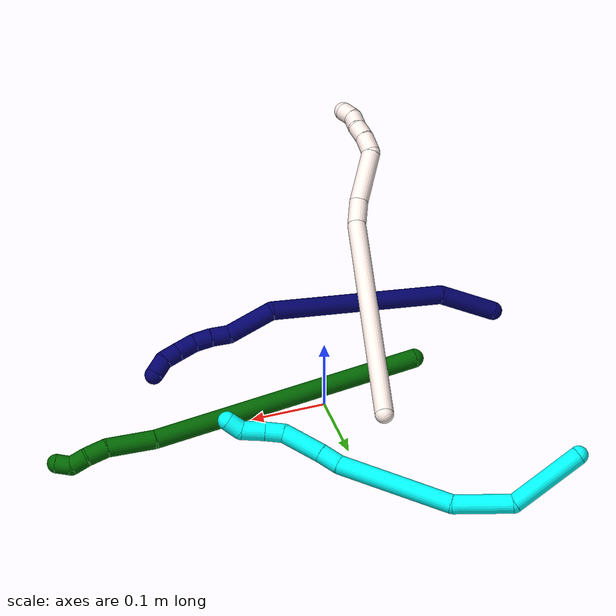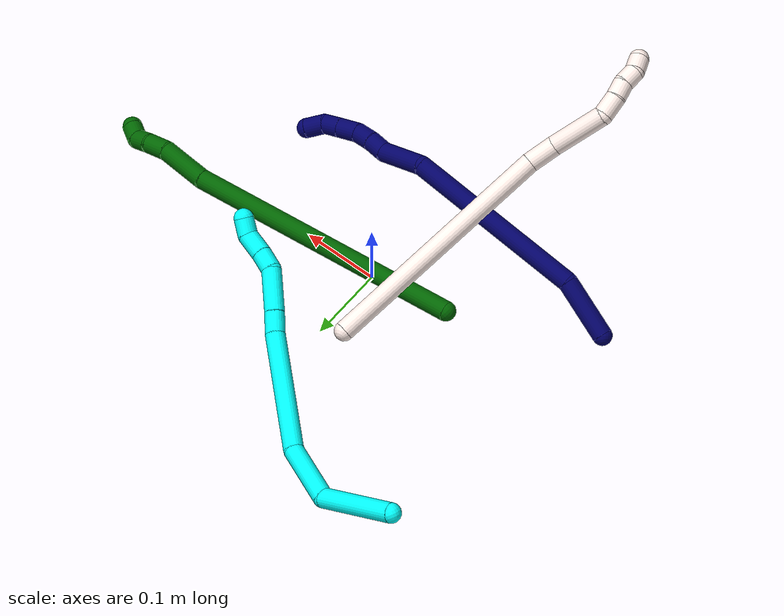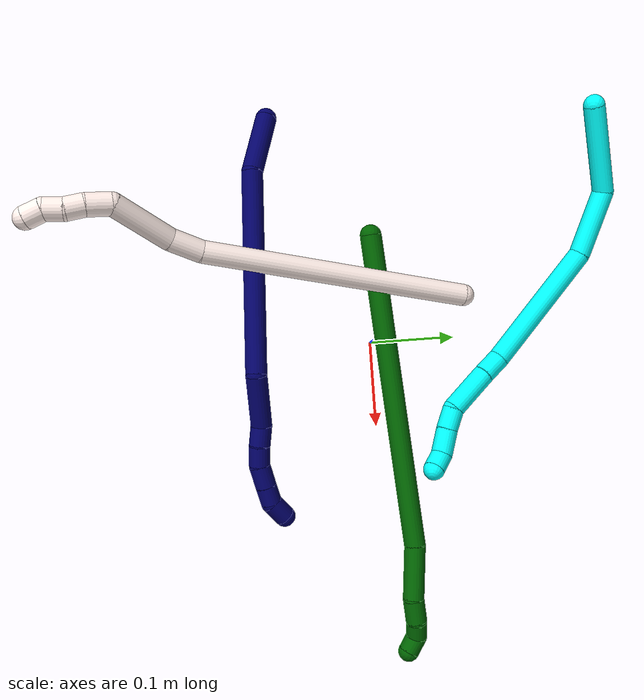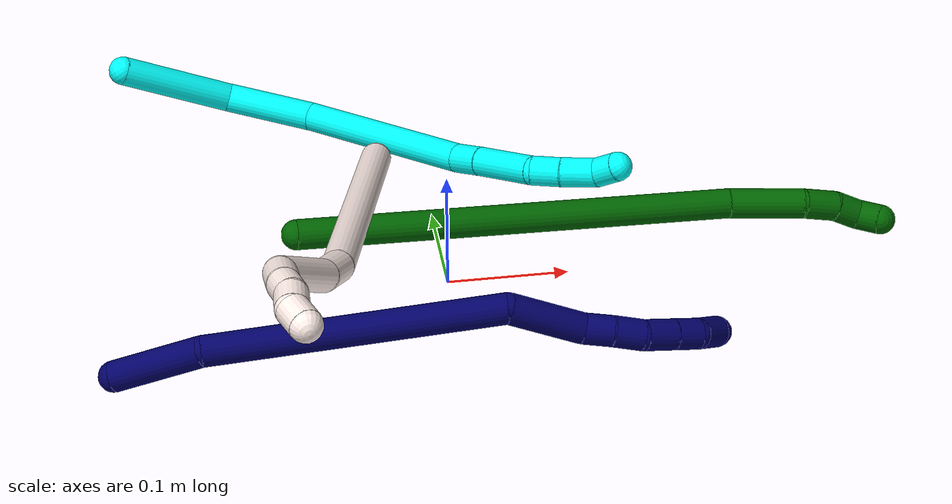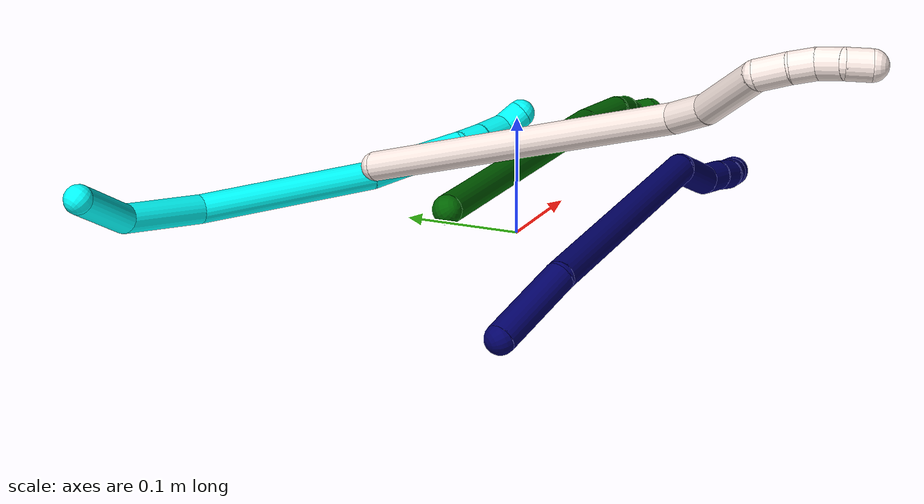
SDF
<sdf version="1.7">
 <world name="default">
  <model name="3">
   <static>0</static>
   <link name="3">
    <collision name="collision-cylinder-e_1_1_4">
     <pose>-0.001968 -0.047898 -0.018093 1.93197 -0.038408 -0.055558</pose>
     <geometry><cylinder><radius>0.0125</radius><length>0.102478</length></cylinder></geometry>
     <surface>
      <friction><ode><mu>1.16</mu><mu2>1.16</mu2><slip1>0</slip1><slip2>0</slip2></ode></friction>
      <contact><ode><kp>1e+06</kp><kd>1</kd><max_vel>0</max_vel><min_depth>0.001</min_depth></ode></contact>
     </surface>
    </collision>
    <visual name="visual-cylinder-e_1_1_4">
     <pose>-0.001968 -0.047898 -0.018093 1.93197 -0.038408 -0.055558</pose>
     <geometry><cylinder><radius>0.0125</radius><length>0.102478</length></cylinder></geometry>
     <material><ambient>0.003922 1 0.996078 1</ambient></material>
    </visual>
    <collision name="collision-cylinder-e_2_4_5">
     <pose>0.00968 -0.119018 -0.064852 2.46072 0.353561 0.934202</pose>
     <geometry><cylinder><radius>0.0125</radius><length>0.078647</length></cylinder></geometry>
     <surface>
      <friction><ode><mu>1.16</mu><mu2>1.16</mu2><slip1>0</slip1><slip2>0</slip2></ode></friction>
      <contact><ode><kp>1e+06</kp><kd>1</kd><max_vel>0</max_vel><min_depth>0.001</min_depth></ode></contact>
     </surface>
    </collision>
    <visual name="visual-cylinder-e_2_4_5">
     <pose>0.00968 -0.119018 -0.064852 2.46072 0.353561 0.934202</pose>
     <geometry><cylinder><radius>0.0125</radius><length>0.078647</length></cylinder></geometry>
     <material><ambient>0.003922 1 0.996078 1</ambient></material>
    </visual>
    <collision name="collision-cylinder-e_3_5_6">
     <pose>0.066566 -0.165205 -0.155568 2.78713 0.579172 2.05911</pose>
     <geometry><cylinder><radius>0.0125</radius><length>0.158114</length></cylinder></geometry>
     <surface>
      <friction><ode><mu>1.16</mu><mu2>1.16</mu2><slip1>0</slip1><slip2>0</slip2></ode></friction>
      <contact><ode><kp>1e+06</kp><kd>1</kd><max_vel>0</max_vel><min_depth>0.001</min_depth></ode></contact>
     </surface>
    </collision>
    <visual name="visual-cylinder-e_3_5_6">
     <pose>0.066566 -0.165205 -0.155568 2.78713 0.579172 2.05911</pose>
     <geometry><cylinder><radius>0.0125</radius><length>0.158114</length></cylinder></geometry>
     <material><ambient>0.003922 1 0.996078 1</ambient></material>
    </visual>
    <collision name="collision-cylinder-e_4_6_7">
     <pose>0.117251 -0.189164 -0.22936 3.05711 0.56163 2.85061</pose>
     <geometry><cylinder><radius>0.0125</radius><length>0.027843</length></cylinder></geometry>
     <surface>
      <friction><ode><mu>1.16</mu><mu2>1.16</mu2><slip1>0</slip1><slip2>0</slip2></ode></friction>
      <contact><ode><kp>1e+06</kp><kd>1</kd><max_vel>0</max_vel><min_depth>0.001</min_depth></ode></contact>
     </surface>
    </collision>
    <visual name="visual-cylinder-e_4_6_7">
     <pose>0.117251 -0.189164 -0.22936 3.05711 0.56163 2.85061</pose>
     <geometry><cylinder><radius>0.0125</radius><length>0.027843</length></cylinder></geometry>
     <material><ambient>0.003922 1 0.996078 1</ambient></material>
    </visual>
    <collision name="collision-cylinder-e_5_7_8">
     <pose>0.139539 -0.193934 -0.264356 2.98063 0.563126 2.59773</pose>
     <geometry><cylinder><radius>0.0125</radius><length>0.055725</length></cylinder></geometry>
     <surface>
      <friction><ode><mu>1.16</mu><mu2>1.16</mu2><slip1>0</slip1><slip2>0</slip2></ode></friction>
      <contact><ode><kp>1e+06</kp><kd>1</kd><max_vel>0</max_vel><min_depth>0.001</min_depth></ode></contact>
     </surface>
    </collision>
    <visual name="visual-cylinder-e_5_7_8">
     <pose>0.139539 -0.193934 -0.264356 2.98063 0.563126 2.59773</pose>
     <geometry><cylinder><radius>0.0125</radius><length>0.055725</length></cylinder></geometry>
     <material><ambient>0.003922 1 0.996078 1</ambient></material>
    </visual>
    <collision name="collision-cylinder-e_6_8_9">
     <pose>0.157606 -0.203747 -0.298143 2.62103 0.257269 0.904261</pose>
     <geometry><cylinder><radius>0.0125</radius><length>0.025105</length></cylinder></geometry>
     <surface>
      <friction><ode><mu>1.16</mu><mu2>1.16</mu2><slip1>0</slip1><slip2>0</slip2></ode></friction>
      <contact><ode><kp>1e+06</kp><kd>1</kd><max_vel>0</max_vel><min_depth>0.001</min_depth></ode></contact>
     </surface>
    </collision>
    <visual name="visual-cylinder-e_6_8_9">
     <pose>0.157606 -0.203747 -0.298143 2.62103 0.257269 0.904261</pose>
     <geometry><cylinder><radius>0.0125</radius><length>0.025105</length></cylinder></geometry>
     <material><ambient>0.003922 1 0.996078 1</ambient></material>
    </visual>
    <collision name="collision-cylinder-e_7_9_10">
     <pose>0.163422 -0.217726 -0.321437 2.585 0.172689 0.588343</pose>
     <geometry><cylinder><radius>0.0125</radius><length>0.030516</length></cylinder></geometry>
     <surface>
      <friction><ode><mu>1.16</mu><mu2>1.16</mu2><slip1>0</slip1><slip2>0</slip2></ode></friction>
      <contact><ode><kp>1e+06</kp><kd>1</kd><max_vel>0</max_vel><min_depth>0.001</min_depth></ode></contact>
     </surface>
    </collision>
    <visual name="visual-cylinder-e_7_9_10">
     <pose>0.163422 -0.217726 -0.321437 2.585 0.172689 0.588343</pose>
     <geometry><cylinder><radius>0.0125</radius><length>0.030516</length></cylinder></geometry>
     <material><ambient>0.003922 1 0.996078 1</ambient></material>
    </visual>
    <collision name="collision-cylinder-e_8_10_2">
     <pose>0.168485 -0.225599 -0.344705 -3.1352 0.228326 -3.08587</pose>
     <geometry><cylinder><radius>0.0125</radius><length>0.021572</length></cylinder></geometry>
     <surface>
      <friction><ode><mu>1.16</mu><mu2>1.16</mu2><slip1>0</slip1><slip2>0</slip2></ode></friction>
      <contact><ode><kp>1e+06</kp><kd>1</kd><max_vel>0</max_vel><min_depth>0.001</min_depth></ode></contact>
     </surface>
    </collision>
    <visual name="visual-cylinder-e_8_10_2">
     <pose>0.168485 -0.225599 -0.344705 -3.1352 0.228326 -3.08587</pose>
     <geometry><cylinder><radius>0.0125</radius><length>0.021572</length></cylinder></geometry>
     <material><ambient>0.003922 1 0.996078 1</ambient></material>
    </visual>
    <collision name="collision-sphere-2">
     <pose>0.170926 -0.225532 -0.355211 0 -0 0</pose>
     <geometry><sphere><radius>0.0125</radius></sphere></geometry>
     <surface>
      <friction><ode><mu>1.16</mu><mu2>1.16</mu2><slip1>0</slip1><slip2>0</slip2></ode></friction>
      <contact><ode><kp>1e+06</kp><kd>1</kd><max_vel>0</max_vel><min_depth>0.001</min_depth></ode></contact>
     </surface>
    </collision>
    <visual name="visual-sphere-2">
     <pose>0.170926 -0.225532 -0.355211 0 -0 0</pose>
     <geometry><sphere><radius>0.0125</radius></sphere></geometry>
     <material><ambient>0.003922 1 0.996078 1</ambient></material>
    </visual>
    <collision name="collision-sphere-10">
     <pose>0.166044 -0.225666 -0.334199 0 -0 0</pose>
     <geometry><sphere><radius>0.0125</radius></sphere></geometry>
     <surface>
      <friction><ode><mu>1.16</mu><mu2>1.16</mu2><slip1>0</slip1><slip2>0</slip2></ode></friction>
      <contact><ode><kp>1e+06</kp><kd>1</kd><max_vel>0</max_vel><min_depth>0.001</min_depth></ode></contact>
     </surface>
    </collision>
    <visual name="visual-sphere-10">
     <pose>0.166044 -0.225666 -0.334199 0 -0 0</pose>
     <geometry><sphere><radius>0.0125</radius></sphere></geometry>
     <material><ambient>0.003922 1 0.996078 1</ambient></material>
    </visual>
    <collision name="collision-sphere-9">
     <pose>0.1608 -0.209785 -0.308675 0 -0 0</pose>
     <geometry><sphere><radius>0.0125</radius></sphere></geometry>
     <surface>
      <friction><ode><mu>1.16</mu><mu2>1.16</mu2><slip1>0</slip1><slip2>0</slip2></ode></friction>
      <contact><ode><kp>1e+06</kp><kd>1</kd><max_vel>0</max_vel><min_depth>0.001</min_depth></ode></contact>
     </surface>
    </collision>
    <visual name="visual-sphere-9">
     <pose>0.1608 -0.209785 -0.308675 0 -0 0</pose>
     <geometry><sphere><radius>0.0125</radius></sphere></geometry>
     <material><ambient>0.003922 1 0.996078 1</ambient></material>
    </visual>
    <collision name="collision-sphere-4">
     <pose>-0.003935 -0.095796 -0.036186 0 -0 0</pose>
     <geometry><sphere><radius>0.0125</radius></sphere></geometry>
     <surface>
      <friction><ode><mu>1.16</mu><mu2>1.16</mu2><slip1>0</slip1><slip2>0</slip2></ode></friction>
      <contact><ode><kp>1e+06</kp><kd>1</kd><max_vel>0</max_vel><min_depth>0.001</min_depth></ode></contact>
     </surface>
    </collision>
    <visual name="visual-sphere-4">
     <pose>-0.003935 -0.095796 -0.036186 0 -0 0</pose>
     <geometry><sphere><radius>0.0125</radius></sphere></geometry>
     <material><ambient>0.003922 1 0.996078 1</ambient></material>
    </visual>
    <collision name="collision-sphere-1">
     <geometry><sphere><radius>0.0125</radius></sphere></geometry>
     <surface>
      <friction><ode><mu>1.16</mu><mu2>1.16</mu2><slip1>0</slip1><slip2>0</slip2></ode></friction>
      <contact><ode><kp>1e+06</kp><kd>1</kd><max_vel>0</max_vel><min_depth>0.001</min_depth></ode></contact>
     </surface>
    </collision>
    <visual name="visual-sphere-1">
     <geometry><sphere><radius>0.0125</radius></sphere></geometry>
     <material><ambient>0.003922 1 0.996078 1</ambient></material>
    </visual>
    <collision name="collision-sphere-8">
     <pose>0.154413 -0.19771 -0.287612 0 -0 0</pose>
     <geometry><sphere><radius>0.0125</radius></sphere></geometry>
     <surface>
      <friction><ode><mu>1.16</mu><mu2>1.16</mu2><slip1>0</slip1><slip2>0</slip2></ode></friction>
      <contact><ode><kp>1e+06</kp><kd>1</kd><max_vel>0</max_vel><min_depth>0.001</min_depth></ode></contact>
     </surface>
    </collision>
    <visual name="visual-sphere-8">
     <pose>0.154413 -0.19771 -0.287612 0 -0 0</pose>
     <geometry><sphere><radius>0.0125</radius></sphere></geometry>
     <material><ambient>0.003922 1 0.996078 1</ambient></material>
    </visual>
    <collision name="collision-sphere-5">
     <pose>0.023296 -0.14224 -0.093517 0 -0 0</pose>
     <geometry><sphere><radius>0.0125</radius></sphere></geometry>
     <surface>
      <friction><ode><mu>1.16</mu><mu2>1.16</mu2><slip1>0</slip1><slip2>0</slip2></ode></friction>
      <contact><ode><kp>1e+06</kp><kd>1</kd><max_vel>0</max_vel><min_depth>0.001</min_depth></ode></contact>
     </surface>
    </collision>
    <visual name="visual-sphere-5">
     <pose>0.023296 -0.14224 -0.093517 0 -0 0</pose>
     <geometry><sphere><radius>0.0125</radius></sphere></geometry>
     <material><ambient>0.003922 1 0.996078 1</ambient></material>
    </visual>
    <collision name="collision-sphere-6">
     <pose>0.109837 -0.188169 -0.217619 0 -0 0</pose>
     <geometry><sphere><radius>0.0125</radius></sphere></geometry>
     <surface>
      <friction><ode><mu>1.16</mu><mu2>1.16</mu2><slip1>0</slip1><slip2>0</slip2></ode></friction>
      <contact><ode><kp>1e+06</kp><kd>1</kd><max_vel>0</max_vel><min_depth>0.001</min_depth></ode></contact>
     </surface>
    </collision>
    <visual name="visual-sphere-6">
     <pose>0.109837 -0.188169 -0.217619 0 -0 0</pose>
     <geometry><sphere><radius>0.0125</radius></sphere></geometry>
     <material><ambient>0.003922 1 0.996078 1</ambient></material>
    </visual>
    <collision name="collision-sphere-7">
     <pose>0.124665 -0.190158 -0.2411 0 -0 0</pose>
     <geometry><sphere><radius>0.0125</radius></sphere></geometry>
     <surface>
      <friction><ode><mu>1.16</mu><mu2>1.16</mu2><slip1>0</slip1><slip2>0</slip2></ode></friction>
      <contact><ode><kp>1e+06</kp><kd>1</kd><max_vel>0</max_vel><min_depth>0.001</min_depth></ode></contact>
     </surface>
    </collision>
    <visual name="visual-sphere-7">
     <pose>0.124665 -0.190158 -0.2411 0 -0 0</pose>
     <geometry><sphere><radius>0.0125</radius></sphere></geometry>
     <material><ambient>0.003922 1 0.996078 1</ambient></material>
    </visual>
    <inertial>
     <pose>0.069407 -0.146179 -0.154798 0 -0 0</pose>
     <mass>0.5</mass>
     <inertia>
      <ixx>0.000275</ixx>
      <ixy>0</ixy>
      <ixz>0</ixz>
      <iyy>0.000444</iyy>
      <iyz>0</iyz>
      <izz>-1.9e-05</izz>
     </inertia>
    </inertial>
   </link>
   <pose>-0.249886 0.272706 0.064001 2.28298 0.37037 -1.6442</pose>
  </model>
  <model name="6">
   <static>0</static>
   <link name="6">
    <collision name="collision-cylinder-e_1_1_4">
     <pose>0.169005 -0.01411 -0.068211 2.93761 1.17986 2.83818</pose>
     <geometry><cylinder><radius>0.0125</radius><length>0.365593</length></cylinder></geometry>
     <surface>
      <friction><ode><mu>1.16</mu><mu2>1.16</mu2><slip1>0</slip1><slip2>0</slip2></ode></friction>
      <contact><ode><kp>1e+06</kp><kd>1</kd><max_vel>0</max_vel><min_depth>0.001</min_depth></ode></contact>
     </surface>
    </collision>
    <visual name="visual-cylinder-e_1_1_4">
     <pose>0.169005 -0.01411 -0.068211 2.93761 1.17986 2.83818</pose>
     <geometry><cylinder><radius>0.0125</radius><length>0.365593</length></cylinder></geometry>
     <material><ambient>0 0.392157 0.003922 1</ambient></material>
    </visual>
    <collision name="collision-cylinder-e_2_4_5">
     <pose>0.368412 -0.033043 -0.143567 2.54788 1.29453 2.37253</pose>
     <geometry><cylinder><radius>0.0125</radius><length>0.063201</length></cylinder></geometry>
     <surface>
      <friction><ode><mu>1.16</mu><mu2>1.16</mu2><slip1>0</slip1><slip2>0</slip2></ode></friction>
      <contact><ode><kp>1e+06</kp><kd>1</kd><max_vel>0</max_vel><min_depth>0.001</min_depth></ode></contact>
     </surface>
    </collision>
    <visual name="visual-cylinder-e_2_4_5">
     <pose>0.368412 -0.033043 -0.143567 2.54788 1.29453 2.37253</pose>
     <geometry><cylinder><radius>0.0125</radius><length>0.063201</length></cylinder></geometry>
     <material><ambient>0 0.392157 0.003922 1</ambient></material>
    </visual>
    <collision name="collision-cylinder-e_3_5_6">
     <pose>0.411259 -0.04093 -0.157157 2.69765 1.05007 2.39855</pose>
     <geometry><cylinder><radius>0.0125</radius><length>0.028691</length></cylinder></geometry>
     <surface>
      <friction><ode><mu>1.16</mu><mu2>1.16</mu2><slip1>0</slip1><slip2>0</slip2></ode></friction>
      <contact><ode><kp>1e+06</kp><kd>1</kd><max_vel>0</max_vel><min_depth>0.001</min_depth></ode></contact>
     </surface>
    </collision>
    <visual name="visual-cylinder-e_3_5_6">
     <pose>0.411259 -0.04093 -0.157157 2.69765 1.05007 2.39855</pose>
     <geometry><cylinder><radius>0.0125</radius><length>0.028691</length></cylinder></geometry>
     <material><ambient>0 0.392157 0.003922 1</ambient></material>
    </visual>
    <collision name="collision-cylinder-e_4_6_7">
     <pose>0.432294 -0.048974 -0.168791 2.37693 0.873897 1.71994</pose>
     <geometry><cylinder><radius>0.0125</radius><length>0.022406</length></cylinder></geometry>
     <surface>
      <friction><ode><mu>1.16</mu><mu2>1.16</mu2><slip1>0</slip1><slip2>0</slip2></ode></friction>
      <contact><ode><kp>1e+06</kp><kd>1</kd><max_vel>0</max_vel><min_depth>0.001</min_depth></ode></contact>
     </surface>
    </collision>
    <visual name="visual-cylinder-e_4_6_7">
     <pose>0.432294 -0.048974 -0.168791 2.37693 0.873897 1.71994</pose>
     <geometry><cylinder><radius>0.0125</radius><length>0.022406</length></cylinder></geometry>
     <material><ambient>0 0.392157 0.003922 1</ambient></material>
    </visual>
    <collision name="collision-cylinder-e_5_7_2">
     <pose>0.450127 -0.057502 -0.172228 1.11257 1.16616 0.778395</pose>
     <geometry><cylinder><radius>0.0125</radius><length>0.020109</length></cylinder></geometry>
     <surface>
      <friction><ode><mu>1.16</mu><mu2>1.16</mu2><slip1>0</slip1><slip2>0</slip2></ode></friction>
      <contact><ode><kp>1e+06</kp><kd>1</kd><max_vel>0</max_vel><min_depth>0.001</min_depth></ode></contact>
     </surface>
    </collision>
    <visual name="visual-cylinder-e_5_7_2">
     <pose>0.450127 -0.057502 -0.172228 1.11257 1.16616 0.778395</pose>
     <geometry><cylinder><radius>0.0125</radius><length>0.020109</length></cylinder></geometry>
     <material><ambient>0 0.392157 0.003922 1</ambient></material>
    </visual>
    <collision name="collision-sphere-2">
     <pose>0.459369 -0.061052 -0.170477 0 -0 0</pose>
     <geometry><sphere><radius>0.0125</radius></sphere></geometry>
     <surface>
      <friction><ode><mu>1.16</mu><mu2>1.16</mu2><slip1>0</slip1><slip2>0</slip2></ode></friction>
      <contact><ode><kp>1e+06</kp><kd>1</kd><max_vel>0</max_vel><min_depth>0.001</min_depth></ode></contact>
     </surface>
    </collision>
    <visual name="visual-sphere-2">
     <pose>0.459369 -0.061052 -0.170477 0 -0 0</pose>
     <geometry><sphere><radius>0.0125</radius></sphere></geometry>
     <material><ambient>0 0.392157 0.003922 1</ambient></material>
    </visual>
    <collision name="collision-sphere-7">
     <pose>0.440884 -0.053952 -0.173979 0 -0 0</pose>
     <geometry><sphere><radius>0.0125</radius></sphere></geometry>
     <surface>
      <friction><ode><mu>1.16</mu><mu2>1.16</mu2><slip1>0</slip1><slip2>0</slip2></ode></friction>
      <contact><ode><kp>1e+06</kp><kd>1</kd><max_vel>0</max_vel><min_depth>0.001</min_depth></ode></contact>
     </surface>
    </collision>
    <visual name="visual-sphere-7">
     <pose>0.440884 -0.053952 -0.173979 0 -0 0</pose>
     <geometry><sphere><radius>0.0125</radius></sphere></geometry>
     <material><ambient>0 0.392157 0.003922 1</ambient></material>
    </visual>
    <collision name="collision-sphere-6">
     <pose>0.423703 -0.043996 -0.163602 0 -0 0</pose>
     <geometry><sphere><radius>0.0125</radius></sphere></geometry>
     <surface>
      <friction><ode><mu>1.16</mu><mu2>1.16</mu2><slip1>0</slip1><slip2>0</slip2></ode></friction>
      <contact><ode><kp>1e+06</kp><kd>1</kd><max_vel>0</max_vel><min_depth>0.001</min_depth></ode></contact>
     </surface>
    </collision>
    <visual name="visual-sphere-6">
     <pose>0.423703 -0.043996 -0.163602 0 -0 0</pose>
     <geometry><sphere><radius>0.0125</radius></sphere></geometry>
     <material><ambient>0 0.392157 0.003922 1</ambient></material>
    </visual>
    <collision name="collision-sphere-5">
     <pose>0.398814 -0.037865 -0.150711 0 -0 0</pose>
     <geometry><sphere><radius>0.0125</radius></sphere></geometry>
     <surface>
      <friction><ode><mu>1.16</mu><mu2>1.16</mu2><slip1>0</slip1><slip2>0</slip2></ode></friction>
      <contact><ode><kp>1e+06</kp><kd>1</kd><max_vel>0</max_vel><min_depth>0.001</min_depth></ode></contact>
     </surface>
    </collision>
    <visual name="visual-sphere-5">
     <pose>0.398814 -0.037865 -0.150711 0 -0 0</pose>
     <geometry><sphere><radius>0.0125</radius></sphere></geometry>
     <material><ambient>0 0.392157 0.003922 1</ambient></material>
    </visual>
    <collision name="collision-sphere-1">
     <geometry><sphere><radius>0.0125</radius></sphere></geometry>
     <surface>
      <friction><ode><mu>1.16</mu><mu2>1.16</mu2><slip1>0</slip1><slip2>0</slip2></ode></friction>
      <contact><ode><kp>1e+06</kp><kd>1</kd><max_vel>0</max_vel><min_depth>0.001</min_depth></ode></contact>
     </surface>
    </collision>
    <visual name="visual-sphere-1">
     <geometry><sphere><radius>0.0125</radius></sphere></geometry>
     <material><ambient>0 0.392157 0.003922 1</ambient></material>
    </visual>
    <collision name="collision-sphere-4">
     <pose>0.33801 -0.028221 -0.136423 0 -0 0</pose>
     <geometry><sphere><radius>0.0125</radius></sphere></geometry>
     <surface>
      <friction><ode><mu>1.16</mu><mu2>1.16</mu2><slip1>0</slip1><slip2>0</slip2></ode></friction>
      <contact><ode><kp>1e+06</kp><kd>1</kd><max_vel>0</max_vel><min_depth>0.001</min_depth></ode></contact>
     </surface>
    </collision>
    <visual name="visual-sphere-4">
     <pose>0.33801 -0.028221 -0.136423 0 -0 0</pose>
     <geometry><sphere><radius>0.0125</radius></sphere></geometry>
     <material><ambient>0 0.392157 0.003922 1</ambient></material>
    </visual>
    <inertial>
     <pose>0.231216 -0.02135 -0.091531 0 -0 0</pose>
     <mass>0.5</mass>
     <inertia>
      <ixx>-0.000983</ixx>
      <ixy>0</ixy>
      <ixz>0</ixz>
      <iyy>0.004543</iyy>
      <iyz>0</iyz>
      <izz>-0.003498</izz>
     </inertia>
    </inertial>
   </link>
   <pose>-0.121781 0.008051 0.053528 1.00657 -0.215286 -0.205156</pose>
  </model>
  <model name="7">
   <static>0</static>
   <link name="7">
    <collision name="collision-cylinder-e_1_1_4">
     <pose>0.008909 -0.013911 -0.034892 2.76221 0.232874 1.0943</pose>
     <geometry><cylinder><radius>0.0125</radius><length>0.07721</length></cylinder></geometry>
     <surface>
      <friction><ode><mu>1.16</mu><mu2>1.16</mu2><slip1>0</slip1><slip2>0</slip2></ode></friction>
      <contact><ode><kp>1e+06</kp><kd>1</kd><max_vel>0</max_vel><min_depth>0.001</min_depth></ode></contact>
     </surface>
    </collision>
    <visual name="visual-cylinder-e_1_1_4">
     <pose>0.008909 -0.013911 -0.034892 2.76221 0.232874 1.0943</pose>
     <geometry><cylinder><radius>0.0125</radius><length>0.07721</length></cylinder></geometry>
     <material><ambient>0.003922 0 0.403922 1</ambient></material>
    </visual>
    <collision name="collision-cylinder-e_2_4_5">
     <pose>0.085575 -0.064774 -0.160046 2.75303 0.607165 2.01993</pose>
     <geometry><cylinder><radius>0.0125</radius><length>0.237516</length></cylinder></geometry>
     <surface>
      <friction><ode><mu>1.16</mu><mu2>1.16</mu2><slip1>0</slip1><slip2>0</slip2></ode></friction>
      <contact><ode><kp>1e+06</kp><kd>1</kd><max_vel>0</max_vel><min_depth>0.001</min_depth></ode></contact>
     </surface>
    </collision>
    <visual name="visual-cylinder-e_2_4_5">
     <pose>0.085575 -0.064774 -0.160046 2.75303 0.607165 2.01993</pose>
     <geometry><cylinder><radius>0.0125</radius><length>0.237516</length></cylinder></geometry>
     <material><ambient>0.003922 0 0.403922 1</ambient></material>
    </visual>
    <collision name="collision-cylinder-e_3_5_6">
     <pose>0.180586 -0.100755 -0.26731 -3.0846 1.0123 -3.03883</pose>
     <geometry><cylinder><radius>0.0125</radius><length>0.064277</length></cylinder></geometry>
     <surface>
      <friction><ode><mu>1.16</mu><mu2>1.16</mu2><slip1>0</slip1><slip2>0</slip2></ode></friction>
      <contact><ode><kp>1e+06</kp><kd>1</kd><max_vel>0</max_vel><min_depth>0.001</min_depth></ode></contact>
     </surface>
    </collision>
    <visual name="visual-cylinder-e_3_5_6">
     <pose>0.180586 -0.100755 -0.26731 -3.0846 1.0123 -3.03883</pose>
     <geometry><cylinder><radius>0.0125</radius><length>0.064277</length></cylinder></geometry>
     <material><ambient>0.003922 0 0.403922 1</ambient></material>
    </visual>
    <collision name="collision-cylinder-e_4_6_7">
     <pose>0.215494 -0.100856 -0.293617 3.02697 0.685123 2.82257</pose>
     <geometry><cylinder><radius>0.0125</radius><length>0.024189</length></cylinder></geometry>
     <surface>
      <friction><ode><mu>1.16</mu><mu2>1.16</mu2><slip1>0</slip1><slip2>0</slip2></ode></friction>
      <contact><ode><kp>1e+06</kp><kd>1</kd><max_vel>0</max_vel><min_depth>0.001</min_depth></ode></contact>
     </surface>
    </collision>
    <visual name="visual-cylinder-e_4_6_7">
     <pose>0.215494 -0.100856 -0.293617 3.02697 0.685123 2.82257</pose>
     <geometry><cylinder><radius>0.0125</radius><length>0.024189</length></cylinder></geometry>
     <material><ambient>0.003922 0 0.403922 1</ambient></material>
    </visual>
    <collision name="collision-cylinder-e_5_7_8">
     <pose>0.231917 -0.102728 -0.311048 3.04343 0.820955 2.9168</pose>
     <geometry><cylinder><radius>0.0125</radius><length>0.023968</length></cylinder></geometry>
     <surface>
      <friction><ode><mu>1.16</mu><mu2>1.16</mu2><slip1>0</slip1><slip2>0</slip2></ode></friction>
      <contact><ode><kp>1e+06</kp><kd>1</kd><max_vel>0</max_vel><min_depth>0.001</min_depth></ode></contact>
     </surface>
    </collision>
    <visual name="visual-cylinder-e_5_7_8">
     <pose>0.231917 -0.102728 -0.311048 3.04343 0.820955 2.9168</pose>
     <geometry><cylinder><radius>0.0125</radius><length>0.023968</length></cylinder></geometry>
     <material><ambient>0.003922 0 0.403922 1</ambient></material>
    </visual>
    <collision name="collision-cylinder-e_6_8_9">
     <pose>0.251792 -0.106703 -0.325454 2.67331 1.00614 2.32362</pose>
     <geometry><cylinder><radius>0.0125</radius><length>0.026293</length></cylinder></geometry>
     <surface>
      <friction><ode><mu>1.16</mu><mu2>1.16</mu2><slip1>0</slip1><slip2>0</slip2></ode></friction>
      <contact><ode><kp>1e+06</kp><kd>1</kd><max_vel>0</max_vel><min_depth>0.001</min_depth></ode></contact>
     </surface>
    </collision>
    <visual name="visual-cylinder-e_6_8_9">
     <pose>0.251792 -0.106703 -0.325454 2.67331 1.00614 2.32362</pose>
     <geometry><cylinder><radius>0.0125</radius><length>0.026293</length></cylinder></geometry>
     <material><ambient>0.003922 0 0.403922 1</ambient></material>
    </visual>
    <collision name="collision-cylinder-e_7_9_10">
     <pose>0.272082 -0.11247 -0.33672 2.66244 1.02152 2.31944</pose>
     <geometry><cylinder><radius>0.0125</radius><length>0.021537</length></cylinder></geometry>
     <surface>
      <friction><ode><mu>1.16</mu><mu2>1.16</mu2><slip1>0</slip1><slip2>0</slip2></ode></friction>
      <contact><ode><kp>1e+06</kp><kd>1</kd><max_vel>0</max_vel><min_depth>0.001</min_depth></ode></contact>
     </surface>
    </collision>
    <visual name="visual-cylinder-e_7_9_10">
     <pose>0.272082 -0.11247 -0.33672 2.66244 1.02152 2.31944</pose>
     <geometry><cylinder><radius>0.0125</radius><length>0.021537</length></cylinder></geometry>
     <material><ambient>0.003922 0 0.403922 1</ambient></material>
    </visual>
    <collision name="collision-cylinder-e_8_10_2">
     <pose>0.293251 -0.118613 -0.342078 1.67426 1.28127 1.38192</pose>
     <geometry><cylinder><radius>0.0125</radius><length>0.025011</length></cylinder></geometry>
     <surface>
      <friction><ode><mu>1.16</mu><mu2>1.16</mu2><slip1>0</slip1><slip2>0</slip2></ode></friction>
      <contact><ode><kp>1e+06</kp><kd>1</kd><max_vel>0</max_vel><min_depth>0.001</min_depth></ode></contact>
     </surface>
    </collision>
    <visual name="visual-cylinder-e_8_10_2">
     <pose>0.293251 -0.118613 -0.342078 1.67426 1.28127 1.38192</pose>
     <geometry><cylinder><radius>0.0125</radius><length>0.025011</length></cylinder></geometry>
     <material><ambient>0.003922 0 0.403922 1</ambient></material>
    </visual>
    <collision name="collision-sphere-2">
     <pose>0.305236 -0.122164 -0.342447 0 -0 0</pose>
     <geometry><sphere><radius>0.0125</radius></sphere></geometry>
     <surface>
      <friction><ode><mu>1.16</mu><mu2>1.16</mu2><slip1>0</slip1><slip2>0</slip2></ode></friction>
      <contact><ode><kp>1e+06</kp><kd>1</kd><max_vel>0</max_vel><min_depth>0.001</min_depth></ode></contact>
     </surface>
    </collision>
    <visual name="visual-sphere-2">
     <pose>0.305236 -0.122164 -0.342447 0 -0 0</pose>
     <geometry><sphere><radius>0.0125</radius></sphere></geometry>
     <material><ambient>0.003922 0 0.403922 1</ambient></material>
    </visual>
    <collision name="collision-sphere-10">
     <pose>0.281266 -0.115062 -0.341709 0 -0 0</pose>
     <geometry><sphere><radius>0.0125</radius></sphere></geometry>
     <surface>
      <friction><ode><mu>1.16</mu><mu2>1.16</mu2><slip1>0</slip1><slip2>0</slip2></ode></friction>
      <contact><ode><kp>1e+06</kp><kd>1</kd><max_vel>0</max_vel><min_depth>0.001</min_depth></ode></contact>
     </surface>
    </collision>
    <visual name="visual-sphere-10">
     <pose>0.281266 -0.115062 -0.341709 0 -0 0</pose>
     <geometry><sphere><radius>0.0125</radius></sphere></geometry>
     <material><ambient>0.003922 0 0.403922 1</ambient></material>
    </visual>
    <collision name="collision-sphere-9">
     <pose>0.262898 -0.109878 -0.331732 0 -0 0</pose>
     <geometry><sphere><radius>0.0125</radius></sphere></geometry>
     <surface>
      <friction><ode><mu>1.16</mu><mu2>1.16</mu2><slip1>0</slip1><slip2>0</slip2></ode></friction>
      <contact><ode><kp>1e+06</kp><kd>1</kd><max_vel>0</max_vel><min_depth>0.001</min_depth></ode></contact>
     </surface>
    </collision>
    <visual name="visual-sphere-9">
     <pose>0.262898 -0.109878 -0.331732 0 -0 0</pose>
     <geometry><sphere><radius>0.0125</radius></sphere></geometry>
     <material><ambient>0.003922 0 0.403922 1</ambient></material>
    </visual>
    <collision name="collision-sphere-4">
     <pose>0.017818 -0.027823 -0.069784 0 -0 0</pose>
     <geometry><sphere><radius>0.0125</radius></sphere></geometry>
     <surface>
      <friction><ode><mu>1.16</mu><mu2>1.16</mu2><slip1>0</slip1><slip2>0</slip2></ode></friction>
      <contact><ode><kp>1e+06</kp><kd>1</kd><max_vel>0</max_vel><min_depth>0.001</min_depth></ode></contact>
     </surface>
    </collision>
    <visual name="visual-sphere-4">
     <pose>0.017818 -0.027823 -0.069784 0 -0 0</pose>
     <geometry><sphere><radius>0.0125</radius></sphere></geometry>
     <material><ambient>0.003922 0 0.403922 1</ambient></material>
    </visual>
    <collision name="collision-sphere-1">
     <geometry><sphere><radius>0.0125</radius></sphere></geometry>
     <surface>
      <friction><ode><mu>1.16</mu><mu2>1.16</mu2><slip1>0</slip1><slip2>0</slip2></ode></friction>
      <contact><ode><kp>1e+06</kp><kd>1</kd><max_vel>0</max_vel><min_depth>0.001</min_depth></ode></contact>
     </surface>
    </collision>
    <visual name="visual-sphere-1">
     <geometry><sphere><radius>0.0125</radius></sphere></geometry>
     <material><ambient>0.003922 0 0.403922 1</ambient></material>
    </visual>
    <collision name="collision-sphere-8">
     <pose>0.240686 -0.103528 -0.319177 0 -0 0</pose>
     <geometry><sphere><radius>0.0125</radius></sphere></geometry>
     <surface>
      <friction><ode><mu>1.16</mu><mu2>1.16</mu2><slip1>0</slip1><slip2>0</slip2></ode></friction>
      <contact><ode><kp>1e+06</kp><kd>1</kd><max_vel>0</max_vel><min_depth>0.001</min_depth></ode></contact>
     </surface>
    </collision>
    <visual name="visual-sphere-8">
     <pose>0.240686 -0.103528 -0.319177 0 -0 0</pose>
     <geometry><sphere><radius>0.0125</radius></sphere></geometry>
     <material><ambient>0.003922 0 0.403922 1</ambient></material>
    </visual>
    <collision name="collision-sphere-5">
     <pose>0.153331 -0.101725 -0.250308 0 -0 0</pose>
     <geometry><sphere><radius>0.0125</radius></sphere></geometry>
     <surface>
      <friction><ode><mu>1.16</mu><mu2>1.16</mu2><slip1>0</slip1><slip2>0</slip2></ode></friction>
      <contact><ode><kp>1e+06</kp><kd>1</kd><max_vel>0</max_vel><min_depth>0.001</min_depth></ode></contact>
     </surface>
    </collision>
    <visual name="visual-sphere-5">
     <pose>0.153331 -0.101725 -0.250308 0 -0 0</pose>
     <geometry><sphere><radius>0.0125</radius></sphere></geometry>
     <material><ambient>0.003922 0 0.403922 1</ambient></material>
    </visual>
    <collision name="collision-sphere-6">
     <pose>0.207841 -0.099785 -0.284313 0 -0 0</pose>
     <geometry><sphere><radius>0.0125</radius></sphere></geometry>
     <surface>
      <friction><ode><mu>1.16</mu><mu2>1.16</mu2><slip1>0</slip1><slip2>0</slip2></ode></friction>
      <contact><ode><kp>1e+06</kp><kd>1</kd><max_vel>0</max_vel><min_depth>0.001</min_depth></ode></contact>
     </surface>
    </collision>
    <visual name="visual-sphere-6">
     <pose>0.207841 -0.099785 -0.284313 0 -0 0</pose>
     <geometry><sphere><radius>0.0125</radius></sphere></geometry>
     <material><ambient>0.003922 0 0.403922 1</ambient></material>
    </visual>
    <collision name="collision-sphere-7">
     <pose>0.223147 -0.101927 -0.30292 0 -0 0</pose>
     <geometry><sphere><radius>0.0125</radius></sphere></geometry>
     <surface>
      <friction><ode><mu>1.16</mu><mu2>1.16</mu2><slip1>0</slip1><slip2>0</slip2></ode></friction>
      <contact><ode><kp>1e+06</kp><kd>1</kd><max_vel>0</max_vel><min_depth>0.001</min_depth></ode></contact>
     </surface>
    </collision>
    <visual name="visual-sphere-7">
     <pose>0.223147 -0.101927 -0.30292 0 -0 0</pose>
     <geometry><sphere><radius>0.0125</radius></sphere></geometry>
     <material><ambient>0.003922 0 0.403922 1</ambient></material>
    </visual>
    <inertial>
     <pose>0.126413 -0.072063 -0.193623 0 -0 0</pose>
     <mass>0.5</mass>
     <inertia>
      <ixx>0.000494</ixx>
      <ixy>0</ixy>
      <ixz>0</ixz>
      <iyy>0.001553</iyy>
      <iyz>0</iyz>
      <izz>-0.000342</izz>
     </inertia>
    </inertial>
   </link>
   <pose>-0.27542 -0.105009 0.011498 -1.98723 0.686722 0.565444</pose>
  </model>
  <model name="11">
   <static>0</static>
   <link name="11">
    <collision name="collision-cylinder-e_1_1_4">
     <pose>-0.009684 -0.065929 0.136581 0.44972 -0.063765 -0.014589</pose>
     <geometry><cylinder><radius>0.0125</radius><length>0.30394</length></cylinder></geometry>
     <surface>
      <friction><ode><mu>1.16</mu><mu2>1.16</mu2><slip1>0</slip1><slip2>0</slip2></ode></friction>
      <contact><ode><kp>1e+06</kp><kd>1</kd><max_vel>0</max_vel><min_depth>0.001</min_depth></ode></contact>
     </surface>
    </collision>
    <visual name="visual-cylinder-e_1_1_4">
     <pose>-0.009684 -0.065929 0.136581 0.44972 -0.063765 -0.014589</pose>
     <geometry><cylinder><radius>0.0125</radius><length>0.30394</length></cylinder></geometry>
     <material><ambient>1 0.933333 0.909804 1</ambient></material>
    </visual>
    <collision name="collision-cylinder-e_2_4_5">
     <pose>-0.020319 -0.143029 0.287407 0.665047 -0.052529 -0.018144</pose>
     <geometry><cylinder><radius>0.0125</radius><length>0.036254</length></cylinder></geometry>
     <surface>
      <friction><ode><mu>1.16</mu><mu2>1.16</mu2><slip1>0</slip1><slip2>0</slip2></ode></friction>
      <contact><ode><kp>1e+06</kp><kd>1</kd><max_vel>0</max_vel><min_depth>0.001</min_depth></ode></contact>
     </surface>
    </collision>
    <visual name="visual-cylinder-e_2_4_5">
     <pose>-0.020319 -0.143029 0.287407 0.665047 -0.052529 -0.018144</pose>
     <geometry><cylinder><radius>0.0125</radius><length>0.036254</length></cylinder></geometry>
     <material><ambient>1 0.933333 0.909804 1</ambient></material>
    </visual>
    <collision name="collision-cylinder-e_3_5_6">
     <pose>-0.026553 -0.182014 0.32357 0.90339 -0.148071 -0.071937</pose>
     <geometry><cylinder><radius>0.0125</radius><length>0.071609</length></cylinder></geometry>
     <surface>
      <friction><ode><mu>1.16</mu><mu2>1.16</mu2><slip1>0</slip1><slip2>0</slip2></ode></friction>
      <contact><ode><kp>1e+06</kp><kd>1</kd><max_vel>0</max_vel><min_depth>0.001</min_depth></ode></contact>
     </surface>
    </collision>
    <visual name="visual-cylinder-e_3_5_6">
     <pose>-0.026553 -0.182014 0.32357 0.90339 -0.148071 -0.071937</pose>
     <geometry><cylinder><radius>0.0125</radius><length>0.071609</length></cylinder></geometry>
     <material><ambient>1 0.933333 0.909804 1</ambient></material>
    </visual>
    <collision name="collision-cylinder-e_4_6_7">
     <pose>-0.034422 -0.213372 0.358269 0.270473 -0.192627 -0.02629</pose>
     <geometry><cylinder><radius>0.0125</radius><length>0.027025</length></cylinder></geometry>
     <surface>
      <friction><ode><mu>1.16</mu><mu2>1.16</mu2><slip1>0</slip1><slip2>0</slip2></ode></friction>
      <contact><ode><kp>1e+06</kp><kd>1</kd><max_vel>0</max_vel><min_depth>0.001</min_depth></ode></contact>
     </surface>
    </collision>
    <visual name="visual-cylinder-e_4_6_7">
     <pose>-0.034422 -0.213372 0.358269 0.270473 -0.192627 -0.02629</pose>
     <geometry><cylinder><radius>0.0125</radius><length>0.027025</length></cylinder></geometry>
     <material><ambient>1 0.933333 0.909804 1</ambient></material>
    </visual>
    <collision name="collision-cylinder-e_5_7_8">
     <pose>-0.039129 -0.217827 0.381022 0.091144 -0.208623 -0.009549</pose>
     <geometry><cylinder><radius>0.0125</radius><length>0.020472</length></cylinder></geometry>
     <surface>
      <friction><ode><mu>1.16</mu><mu2>1.16</mu2><slip1>0</slip1><slip2>0</slip2></ode></friction>
      <contact><ode><kp>1e+06</kp><kd>1</kd><max_vel>0</max_vel><min_depth>0.001</min_depth></ode></contact>
     </surface>
    </collision>
    <visual name="visual-cylinder-e_5_7_8">
     <pose>-0.039129 -0.217827 0.381022 0.091144 -0.208623 -0.009549</pose>
     <geometry><cylinder><radius>0.0125</radius><length>0.020472</length></cylinder></geometry>
     <material><ambient>1 0.933333 0.909804 1</ambient></material>
    </visual>
    <collision name="collision-cylinder-e_6_8_9">
     <pose>-0.041013 -0.221029 0.400961 0.225966 0.023082 0.002619</pose>
     <geometry><cylinder><radius>0.0125</radius><length>0.020459</length></cylinder></geometry>
     <surface>
      <friction><ode><mu>1.16</mu><mu2>1.16</mu2><slip1>0</slip1><slip2>0</slip2></ode></friction>
      <contact><ode><kp>1e+06</kp><kd>1</kd><max_vel>0</max_vel><min_depth>0.001</min_depth></ode></contact>
     </surface>
    </collision>
    <visual name="visual-cylinder-e_6_8_9">
     <pose>-0.041013 -0.221029 0.400961 0.225966 0.023082 0.002619</pose>
     <geometry><cylinder><radius>0.0125</radius><length>0.020459</length></cylinder></geometry>
     <material><ambient>1 0.933333 0.909804 1</ambient></material>
    </visual>
    <collision name="collision-cylinder-e_7_9_2">
     <pose>-0.041644 -0.221208 0.420787 -0.211145 -0.085807 0.009098</pose>
     <geometry><cylinder><radius>0.0125</radius><length>0.020241</length></cylinder></geometry>
     <surface>
      <friction><ode><mu>1.16</mu><mu2>1.16</mu2><slip1>0</slip1><slip2>0</slip2></ode></friction>
      <contact><ode><kp>1e+06</kp><kd>1</kd><max_vel>0</max_vel><min_depth>0.001</min_depth></ode></contact>
     </surface>
    </collision>
    <visual name="visual-cylinder-e_7_9_2">
     <pose>-0.041644 -0.221208 0.420787 -0.211145 -0.085807 0.009098</pose>
     <geometry><cylinder><radius>0.0125</radius><length>0.020241</length></cylinder></geometry>
     <material><ambient>1 0.933333 0.909804 1</ambient></material>
    </visual>
    <collision name="collision-sphere-2">
     <pose>-0.042512 -0.219094 0.430647 0 -0 0</pose>
     <geometry><sphere><radius>0.0125</radius></sphere></geometry>
     <surface>
      <friction><ode><mu>1.16</mu><mu2>1.16</mu2><slip1>0</slip1><slip2>0</slip2></ode></friction>
      <contact><ode><kp>1e+06</kp><kd>1</kd><max_vel>0</max_vel><min_depth>0.001</min_depth></ode></contact>
     </surface>
    </collision>
    <visual name="visual-sphere-2">
     <pose>-0.042512 -0.219094 0.430647 0 -0 0</pose>
     <geometry><sphere><radius>0.0125</radius></sphere></geometry>
     <material><ambient>1 0.933333 0.909804 1</ambient></material>
    </visual>
    <collision name="collision-sphere-9">
     <pose>-0.040777 -0.223321 0.410928 0 -0 0</pose>
     <geometry><sphere><radius>0.0125</radius></sphere></geometry>
     <surface>
      <friction><ode><mu>1.16</mu><mu2>1.16</mu2><slip1>0</slip1><slip2>0</slip2></ode></friction>
      <contact><ode><kp>1e+06</kp><kd>1</kd><max_vel>0</max_vel><min_depth>0.001</min_depth></ode></contact>
     </surface>
    </collision>
    <visual name="visual-sphere-9">
     <pose>-0.040777 -0.223321 0.410928 0 -0 0</pose>
     <geometry><sphere><radius>0.0125</radius></sphere></geometry>
     <material><ambient>1 0.933333 0.909804 1</ambient></material>
    </visual>
    <collision name="collision-sphere-4">
     <pose>-0.019368 -0.131858 0.273163 0 -0 0</pose>
     <geometry><sphere><radius>0.0125</radius></sphere></geometry>
     <surface>
      <friction><ode><mu>1.16</mu><mu2>1.16</mu2><slip1>0</slip1><slip2>0</slip2></ode></friction>
      <contact><ode><kp>1e+06</kp><kd>1</kd><max_vel>0</max_vel><min_depth>0.001</min_depth></ode></contact>
     </surface>
    </collision>
    <visual name="visual-sphere-4">
     <pose>-0.019368 -0.131858 0.273163 0 -0 0</pose>
     <geometry><sphere><radius>0.0125</radius></sphere></geometry>
     <material><ambient>1 0.933333 0.909804 1</ambient></material>
    </visual>
    <collision name="collision-sphere-1">
     <geometry><sphere><radius>0.0125</radius></sphere></geometry>
     <surface>
      <friction><ode><mu>1.16</mu><mu2>1.16</mu2><slip1>0</slip1><slip2>0</slip2></ode></friction>
      <contact><ode><kp>1e+06</kp><kd>1</kd><max_vel>0</max_vel><min_depth>0.001</min_depth></ode></contact>
     </surface>
    </collision>
    <visual name="visual-sphere-1">
     <geometry><sphere><radius>0.0125</radius></sphere></geometry>
     <material><ambient>1 0.933333 0.909804 1</ambient></material>
    </visual>
    <collision name="collision-sphere-8">
     <pose>-0.041249 -0.218738 0.390994 0 -0 0</pose>
     <geometry><sphere><radius>0.0125</radius></sphere></geometry>
     <surface>
      <friction><ode><mu>1.16</mu><mu2>1.16</mu2><slip1>0</slip1><slip2>0</slip2></ode></friction>
      <contact><ode><kp>1e+06</kp><kd>1</kd><max_vel>0</max_vel><min_depth>0.001</min_depth></ode></contact>
     </surface>
    </collision>
    <visual name="visual-sphere-8">
     <pose>-0.041249 -0.218738 0.390994 0 -0 0</pose>
     <geometry><sphere><radius>0.0125</radius></sphere></geometry>
     <material><ambient>1 0.933333 0.909804 1</ambient></material>
    </visual>
    <collision name="collision-sphere-5">
     <pose>-0.021271 -0.1542 0.301651 0 -0 0</pose>
     <geometry><sphere><radius>0.0125</radius></sphere></geometry>
     <surface>
      <friction><ode><mu>1.16</mu><mu2>1.16</mu2><slip1>0</slip1><slip2>0</slip2></ode></friction>
      <contact><ode><kp>1e+06</kp><kd>1</kd><max_vel>0</max_vel><min_depth>0.001</min_depth></ode></contact>
     </surface>
    </collision>
    <visual name="visual-sphere-5">
     <pose>-0.021271 -0.1542 0.301651 0 -0 0</pose>
     <geometry><sphere><radius>0.0125</radius></sphere></geometry>
     <material><ambient>1 0.933333 0.909804 1</ambient></material>
    </visual>
    <collision name="collision-sphere-6">
     <pose>-0.031836 -0.209828 0.345489 0 -0 0</pose>
     <geometry><sphere><radius>0.0125</radius></sphere></geometry>
     <surface>
      <friction><ode><mu>1.16</mu><mu2>1.16</mu2><slip1>0</slip1><slip2>0</slip2></ode></friction>
      <contact><ode><kp>1e+06</kp><kd>1</kd><max_vel>0</max_vel><min_depth>0.001</min_depth></ode></contact>
     </surface>
    </collision>
    <visual name="visual-sphere-6">
     <pose>-0.031836 -0.209828 0.345489 0 -0 0</pose>
     <geometry><sphere><radius>0.0125</radius></sphere></geometry>
     <material><ambient>1 0.933333 0.909804 1</ambient></material>
    </visual>
    <collision name="collision-sphere-7">
     <pose>-0.037009 -0.216915 0.371049 0 -0 0</pose>
     <geometry><sphere><radius>0.0125</radius></sphere></geometry>
     <surface>
      <friction><ode><mu>1.16</mu><mu2>1.16</mu2><slip1>0</slip1><slip2>0</slip2></ode></friction>
      <contact><ode><kp>1e+06</kp><kd>1</kd><max_vel>0</max_vel><min_depth>0.001</min_depth></ode></contact>
     </surface>
    </collision>
    <visual name="visual-sphere-7">
     <pose>-0.037009 -0.216915 0.371049 0 -0 0</pose>
     <geometry><sphere><radius>0.0125</radius></sphere></geometry>
     <material><ambient>1 0.933333 0.909804 1</ambient></material>
    </visual>
    <inertial>
     <pose>-0.017989 -0.114966 0.218611 0 -0 0</pose>
     <mass>0.5</mass>
     <inertia>
      <ixx>0.002352</ixx>
      <ixy>0</ixy>
      <ixz>0</ixz>
      <iyy>0.002097</iyy>
      <iyz>0</iyz>
      <izz>0.00124</izz>
     </inertia>
    </inertial>
   </link>
   <pose>-0.045382 0.108833 0.057074 -1.56908 0.988642 -2.99457</pose>
  </model>
 </world>
</sdf>
